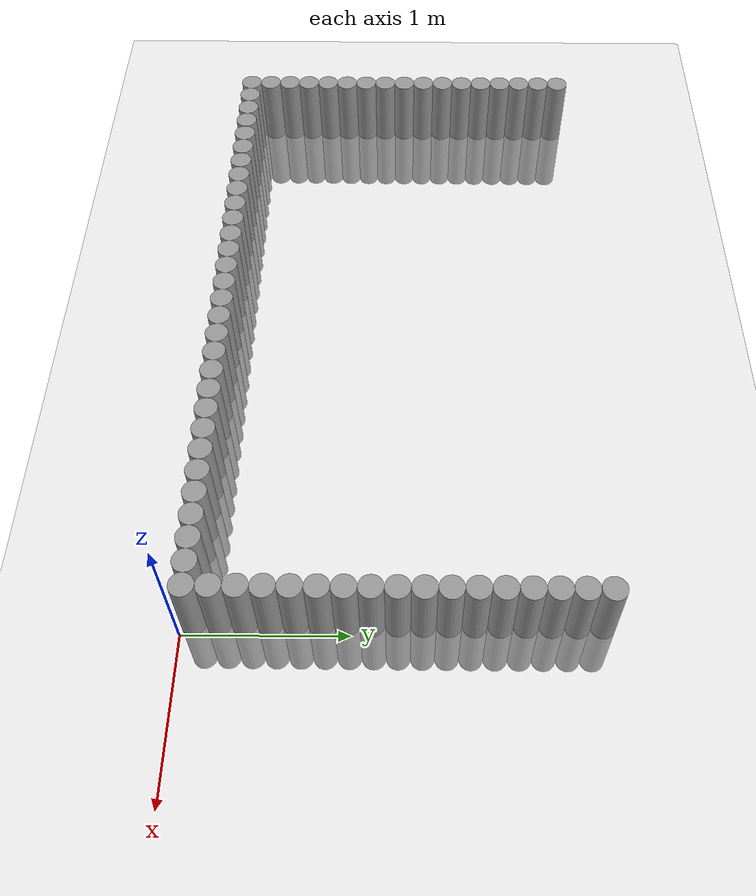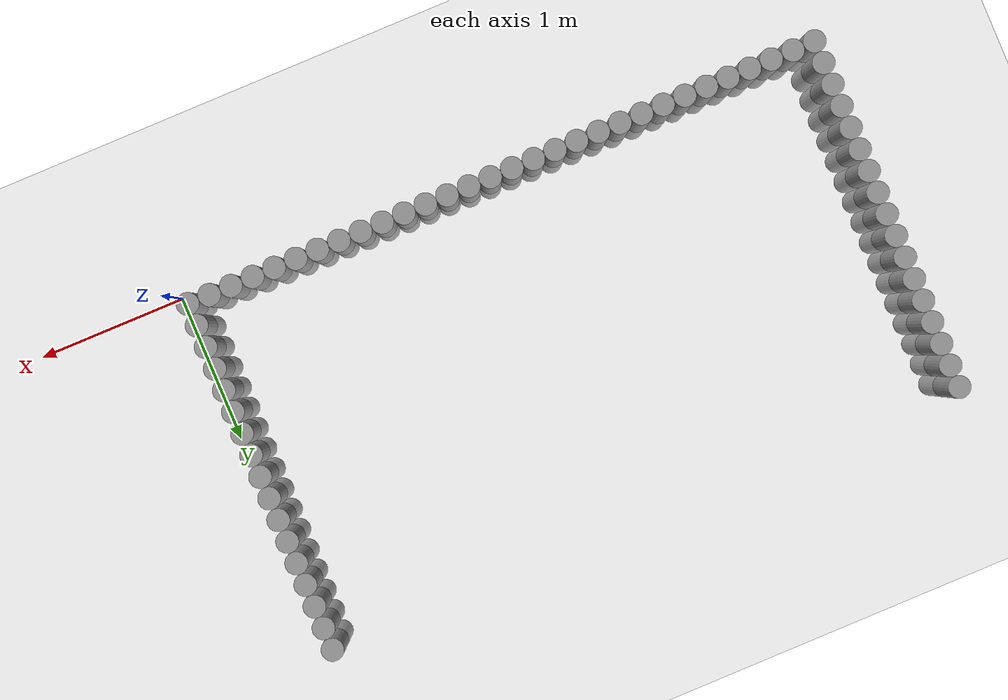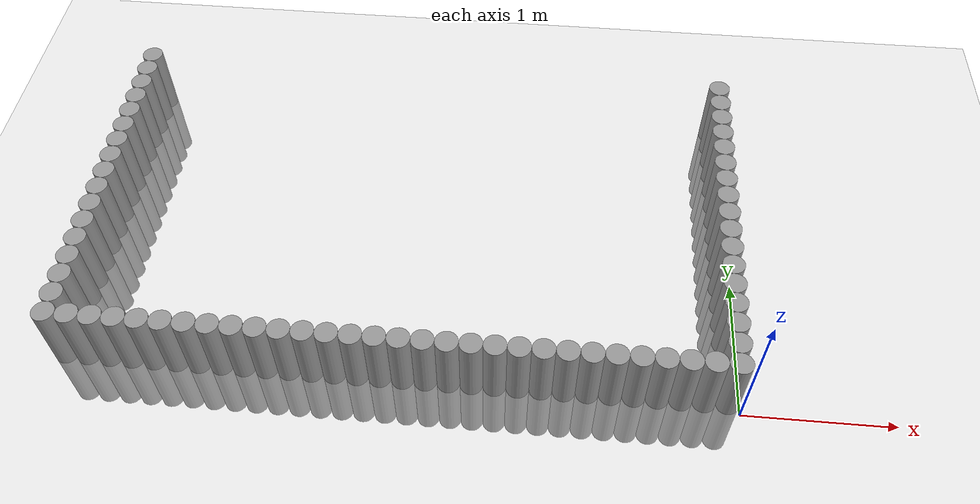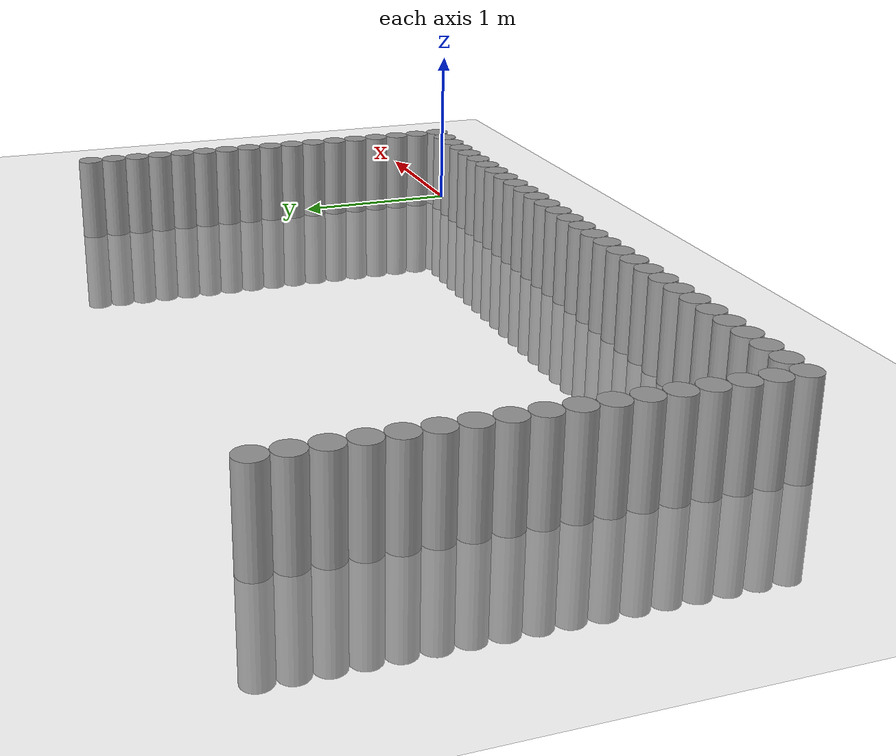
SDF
<sdf version="1.6">
 <world name="default">
  <model name="ground_plane">
   <static>1</static>
   <link name="link">
    <collision name="collision">
     <geometry><plane><normal>0 0 1</normal><size>100 100</size></plane></geometry>
     <surface><friction><ode><mu>100</mu><mu2>50</mu2></ode></friction></surface>
    </collision>
    <visual name="visual">
     <cast_shadows>0</cast_shadows>
     <geometry><plane><normal>0 0 1</normal><size>100 100</size></plane></geometry>
     <material>
      <script><uri>file://media/materials/scripts/gazebo.material</uri><name>Gazebo/Grey</name></script>
     </material>
    </visual>
   </link>
  </model>
  <model name="unit_cylinder_0">
   <pose>-0.075000 0.075000 0.000000 0.000000 0.000000 0.000000</pose>
   <link name="link">
    <inertial>
     <mass>1</mass>
     <inertia><ixx>0.145833</ixx><ixy>0</ixy><ixz>0</ixz><iyy>0.145833</iyy><iyz>0</iyz><izz>0.125</izz></inertia>
    </inertial>
    <collision name="collision">
     <geometry><cylinder><radius>0.075000</radius><length>1</length></cylinder></geometry>
    </collision>
    <visual name="visual">
     <geometry><cylinder><radius>0.075000</radius><length>1</length></cylinder></geometry>
     <material>
      <script><name>Gazebo/Grey</name><uri>file://media/materials/scripts/gazebo.material</uri></script>
     </material>
    </visual>
   </link>
  </model>
  <model name="unit_cylinder_1">
   <pose>-0.225000 0.075000 0.000000 0.000000 0.000000 0.000000</pose>
   <link name="link">
    <inertial>
     <mass>1</mass>
     <inertia><ixx>0.145833</ixx><ixy>0</ixy><ixz>0</ixz><iyy>0.145833</iyy><iyz>0</iyz><izz>0.125</izz></inertia>
    </inertial>
    <collision name="collision">
     <geometry><cylinder><radius>0.075000</radius><length>1</length></cylinder></geometry>
    </collision>
    <visual name="visual">
     <geometry><cylinder><radius>0.075000</radius><length>1</length></cylinder></geometry>
     <material>
      <script><name>Gazebo/Grey</name><uri>file://media/materials/scripts/gazebo.material</uri></script>
     </material>
    </visual>
   </link>
  </model>
  <model name="unit_cylinder_2">
   <pose>-0.375000 0.075000 0.000000 0.000000 0.000000 0.000000</pose>
   <link name="link">
    <inertial>
     <mass>1</mass>
     <inertia><ixx>0.145833</ixx><ixy>0</ixy><ixz>0</ixz><iyy>0.145833</iyy><iyz>0</iyz><izz>0.125</izz></inertia>
    </inertial>
    <collision name="collision">
     <geometry><cylinder><radius>0.075000</radius><length>1</length></cylinder></geometry>
    </collision>
    <visual name="visual">
     <geometry><cylinder><radius>0.075000</radius><length>1</length></cylinder></geometry>
     <material>
      <script><name>Gazebo/Grey</name><uri>file://media/materials/scripts/gazebo.material</uri></script>
     </material>
    </visual>
   </link>
  </model>
  <model name="unit_cylinder_3">
   <pose>-0.525000 0.075000 0.000000 0.000000 0.000000 0.000000</pose>
   <link name="link">
    <inertial>
     <mass>1</mass>
     <inertia><ixx>0.145833</ixx><ixy>0</ixy><ixz>0</ixz><iyy>0.145833</iyy><iyz>0</iyz><izz>0.125</izz></inertia>
    </inertial>
    <collision name="collision">
     <geometry><cylinder><radius>0.075000</radius><length>1</length></cylinder></geometry>
    </collision>
    <visual name="visual">
     <geometry><cylinder><radius>0.075000</radius><length>1</length></cylinder></geometry>
     <material>
      <script><name>Gazebo/Grey</name><uri>file://media/materials/scripts/gazebo.material</uri></script>
     </material>
    </visual>
   </link>
  </model>
  <model name="unit_cylinder_4">
   <pose>-0.675000 0.075000 0.000000 0.000000 0.000000 0.000000</pose>
   <link name="link">
    <inertial>
     <mass>1</mass>
     <inertia><ixx>0.145833</ixx><ixy>0</ixy><ixz>0</ixz><iyy>0.145833</iyy><iyz>0</iyz><izz>0.125</izz></inertia>
    </inertial>
    <collision name="collision">
     <geometry><cylinder><radius>0.075000</radius><length>1</length></cylinder></geometry>
    </collision>
    <visual name="visual">
     <geometry><cylinder><radius>0.075000</radius><length>1</length></cylinder></geometry>
     <material>
      <script><name>Gazebo/Grey</name><uri>file://media/materials/scripts/gazebo.material</uri></script>
     </material>
    </visual>
   </link>
  </model>
  <model name="unit_cylinder_5">
   <pose>-0.825000 0.075000 0.000000 0.000000 0.000000 0.000000</pose>
   <link name="link">
    <inertial>
     <mass>1</mass>
     <inertia><ixx>0.145833</ixx><ixy>0</ixy><ixz>0</ixz><iyy>0.145833</iyy><iyz>0</iyz><izz>0.125</izz></inertia>
    </inertial>
    <collision name="collision">
     <geometry><cylinder><radius>0.075000</radius><length>1</length></cylinder></geometry>
    </collision>
    <visual name="visual">
     <geometry><cylinder><radius>0.075000</radius><length>1</length></cylinder></geometry>
     <material>
      <script><name>Gazebo/Grey</name><uri>file://media/materials/scripts/gazebo.material</uri></script>
     </material>
    </visual>
   </link>
  </model>
  <model name="unit_cylinder_6">
   <pose>-0.975000 0.075000 0.000000 0.000000 0.000000 0.000000</pose>
   <link name="link">
    <inertial>
     <mass>1</mass>
     <inertia><ixx>0.145833</ixx><ixy>0</ixy><ixz>0</ixz><iyy>0.145833</iyy><iyz>0</iyz><izz>0.125</izz></inertia>
    </inertial>
    <collision name="collision">
     <geometry><cylinder><radius>0.075000</radius><length>1</length></cylinder></geometry>
    </collision>
    <visual name="visual">
     <geometry><cylinder><radius>0.075000</radius><length>1</length></cylinder></geometry>
     <material>
      <script><name>Gazebo/Grey</name><uri>file://media/materials/scripts/gazebo.material</uri></script>
     </material>
    </visual>
   </link>
  </model>
  <model name="unit_cylinder_7">
   <pose>-1.125000 0.075000 0.000000 0.000000 0.000000 0.000000</pose>
   <link name="link">
    <inertial>
     <mass>1</mass>
     <inertia><ixx>0.145833</ixx><ixy>0</ixy><ixz>0</ixz><iyy>0.145833</iyy><iyz>0</iyz><izz>0.125</izz></inertia>
    </inertial>
    <collision name="collision">
     <geometry><cylinder><radius>0.075000</radius><length>1</length></cylinder></geometry>
    </collision>
    <visual name="visual">
     <geometry><cylinder><radius>0.075000</radius><length>1</length></cylinder></geometry>
     <material>
      <script><name>Gazebo/Grey</name><uri>file://media/materials/scripts/gazebo.material</uri></script>
     </material>
    </visual>
   </link>
  </model>
  <model name="unit_cylinder_8">
   <pose>-1.275000 0.075000 0.000000 0.000000 0.000000 0.000000</pose>
   <link name="link">
    <inertial>
     <mass>1</mass>
     <inertia><ixx>0.145833</ixx><ixy>0</ixy><ixz>0</ixz><iyy>0.145833</iyy><iyz>0</iyz><izz>0.125</izz></inertia>
    </inertial>
    <collision name="collision">
     <geometry><cylinder><radius>0.075000</radius><length>1</length></cylinder></geometry>
    </collision>
    <visual name="visual">
     <geometry><cylinder><radius>0.075000</radius><length>1</length></cylinder></geometry>
     <material>
      <script><name>Gazebo/Grey</name><uri>file://media/materials/scripts/gazebo.material</uri></script>
     </material>
    </visual>
   </link>
  </model>
  <model name="unit_cylinder_9">
   <pose>-1.425000 0.075000 0.000000 0.000000 0.000000 0.000000</pose>
   <link name="link">
    <inertial>
     <mass>1</mass>
     <inertia><ixx>0.145833</ixx><ixy>0</ixy><ixz>0</ixz><iyy>0.145833</iyy><iyz>0</iyz><izz>0.125</izz></inertia>
    </inertial>
    <collision name="collision">
     <geometry><cylinder><radius>0.075000</radius><length>1</length></cylinder></geometry>
    </collision>
    <visual name="visual">
     <geometry><cylinder><radius>0.075000</radius><length>1</length></cylinder></geometry>
     <material>
      <script><name>Gazebo/Grey</name><uri>file://media/materials/scripts/gazebo.material</uri></script>
     </material>
    </visual>
   </link>
  </model>
  <model name="unit_cylinder_10">
   <pose>-1.575000 0.075000 0.000000 0.000000 0.000000 0.000000</pose>
   <link name="link">
    <inertial>
     <mass>1</mass>
     <inertia><ixx>0.145833</ixx><ixy>0</ixy><ixz>0</ixz><iyy>0.145833</iyy><iyz>0</iyz><izz>0.125</izz></inertia>
    </inertial>
    <collision name="collision">
     <geometry><cylinder><radius>0.075000</radius><length>1</length></cylinder></geometry>
    </collision>
    <visual name="visual">
     <geometry><cylinder><radius>0.075000</radius><length>1</length></cylinder></geometry>
     <material>
      <script><name>Gazebo/Grey</name><uri>file://media/materials/scripts/gazebo.material</uri></script>
     </material>
    </visual>
   </link>
  </model>
  <model name="unit_cylinder_11">
   <pose>-1.725000 0.075000 0.000000 0.000000 0.000000 0.000000</pose>
   <link name="link">
    <inertial>
     <mass>1</mass>
     <inertia><ixx>0.145833</ixx><ixy>0</ixy><ixz>0</ixz><iyy>0.145833</iyy><iyz>0</iyz><izz>0.125</izz></inertia>
    </inertial>
    <collision name="collision">
     <geometry><cylinder><radius>0.075000</radius><length>1</length></cylinder></geometry>
    </collision>
    <visual name="visual">
     <geometry><cylinder><radius>0.075000</radius><length>1</length></cylinder></geometry>
     <material>
      <script><name>Gazebo/Grey</name><uri>file://media/materials/scripts/gazebo.material</uri></script>
     </material>
    </visual>
   </link>
  </model>
  <model name="unit_cylinder_12">
   <pose>-1.875000 0.075000 0.000000 0.000000 0.000000 0.000000</pose>
   <link name="link">
    <inertial>
     <mass>1</mass>
     <inertia><ixx>0.145833</ixx><ixy>0</ixy><ixz>0</ixz><iyy>0.145833</iyy><iyz>0</iyz><izz>0.125</izz></inertia>
    </inertial>
    <collision name="collision">
     <geometry><cylinder><radius>0.075000</radius><length>1</length></cylinder></geometry>
    </collision>
    <visual name="visual">
     <geometry><cylinder><radius>0.075000</radius><length>1</length></cylinder></geometry>
     <material>
      <script><name>Gazebo/Grey</name><uri>file://media/materials/scripts/gazebo.material</uri></script>
     </material>
    </visual>
   </link>
  </model>
  <model name="unit_cylinder_13">
   <pose>-2.025000 0.075000 0.000000 0.000000 0.000000 0.000000</pose>
   <link name="link">
    <inertial>
     <mass>1</mass>
     <inertia><ixx>0.145833</ixx><ixy>0</ixy><ixz>0</ixz><iyy>0.145833</iyy><iyz>0</iyz><izz>0.125</izz></inertia>
    </inertial>
    <collision name="collision">
     <geometry><cylinder><radius>0.075000</radius><length>1</length></cylinder></geometry>
    </collision>
    <visual name="visual">
     <geometry><cylinder><radius>0.075000</radius><length>1</length></cylinder></geometry>
     <material>
      <script><name>Gazebo/Grey</name><uri>file://media/materials/scripts/gazebo.material</uri></script>
     </material>
    </visual>
   </link>
  </model>
  <model name="unit_cylinder_14">
   <pose>-2.175000 0.075000 0.000000 0.000000 0.000000 0.000000</pose>
   <link name="link">
    <inertial>
     <mass>1</mass>
     <inertia><ixx>0.145833</ixx><ixy>0</ixy><ixz>0</ixz><iyy>0.145833</iyy><iyz>0</iyz><izz>0.125</izz></inertia>
    </inertial>
    <collision name="collision">
     <geometry><cylinder><radius>0.075000</radius><length>1</length></cylinder></geometry>
    </collision>
    <visual name="visual">
     <geometry><cylinder><radius>0.075000</radius><length>1</length></cylinder></geometry>
     <material>
      <script><name>Gazebo/Grey</name><uri>file://media/materials/scripts/gazebo.material</uri></script>
     </material>
    </visual>
   </link>
  </model>
  <model name="unit_cylinder_15">
   <pose>-2.325000 0.075000 0.000000 0.000000 0.000000 0.000000</pose>
   <link name="link">
    <inertial>
     <mass>1</mass>
     <inertia><ixx>0.145833</ixx><ixy>0</ixy><ixz>0</ixz><iyy>0.145833</iyy><iyz>0</iyz><izz>0.125</izz></inertia>
    </inertial>
    <collision name="collision">
     <geometry><cylinder><radius>0.075000</radius><length>1</length></cylinder></geometry>
    </collision>
    <visual name="visual">
     <geometry><cylinder><radius>0.075000</radius><length>1</length></cylinder></geometry>
     <material>
      <script><name>Gazebo/Grey</name><uri>file://media/materials/scripts/gazebo.material</uri></script>
     </material>
    </visual>
   </link>
  </model>
  <model name="unit_cylinder_16">
   <pose>-2.475000 0.075000 0.000000 0.000000 0.000000 0.000000</pose>
   <link name="link">
    <inertial>
     <mass>1</mass>
     <inertia><ixx>0.145833</ixx><ixy>0</ixy><ixz>0</ixz><iyy>0.145833</iyy><iyz>0</iyz><izz>0.125</izz></inertia>
    </inertial>
    <collision name="collision">
     <geometry><cylinder><radius>0.075000</radius><length>1</length></cylinder></geometry>
    </collision>
    <visual name="visual">
     <geometry><cylinder><radius>0.075000</radius><length>1</length></cylinder></geometry>
     <material>
      <script><name>Gazebo/Grey</name><uri>file://media/materials/scripts/gazebo.material</uri></script>
     </material>
    </visual>
   </link>
  </model>
  <model name="unit_cylinder_17">
   <pose>-2.625000 0.075000 0.000000 0.000000 0.000000 0.000000</pose>
   <link name="link">
    <inertial>
     <mass>1</mass>
     <inertia><ixx>0.145833</ixx><ixy>0</ixy><ixz>0</ixz><iyy>0.145833</iyy><iyz>0</iyz><izz>0.125</izz></inertia>
    </inertial>
    <collision name="collision">
     <geometry><cylinder><radius>0.075000</radius><length>1</length></cylinder></geometry>
    </collision>
    <visual name="visual">
     <geometry><cylinder><radius>0.075000</radius><length>1</length></cylinder></geometry>
     <material>
      <script><name>Gazebo/Grey</name><uri>file://media/materials/scripts/gazebo.material</uri></script>
     </material>
    </visual>
   </link>
  </model>
  <model name="unit_cylinder_18">
   <pose>-2.775000 0.075000 0.000000 0.000000 0.000000 0.000000</pose>
   <link name="link">
    <inertial>
     <mass>1</mass>
     <inertia><ixx>0.145833</ixx><ixy>0</ixy><ixz>0</ixz><iyy>0.145833</iyy><iyz>0</iyz><izz>0.125</izz></inertia>
    </inertial>
    <collision name="collision">
     <geometry><cylinder><radius>0.075000</radius><length>1</length></cylinder></geometry>
    </collision>
    <visual name="visual">
     <geometry><cylinder><radius>0.075000</radius><length>1</length></cylinder></geometry>
     <material>
      <script><name>Gazebo/Grey</name><uri>file://media/materials/scripts/gazebo.material</uri></script>
     </material>
    </visual>
   </link>
  </model>
  <model name="unit_cylinder_19">
   <pose>-2.925000 0.075000 0.000000 0.000000 0.000000 0.000000</pose>
   <link name="link">
    <inertial>
     <mass>1</mass>
     <inertia><ixx>0.145833</ixx><ixy>0</ixy><ixz>0</ixz><iyy>0.145833</iyy><iyz>0</iyz><izz>0.125</izz></inertia>
    </inertial>
    <collision name="collision">
     <geometry><cylinder><radius>0.075000</radius><length>1</length></cylinder></geometry>
    </collision>
    <visual name="visual">
     <geometry><cylinder><radius>0.075000</radius><length>1</length></cylinder></geometry>
     <material>
      <script><name>Gazebo/Grey</name><uri>file://media/materials/scripts/gazebo.material</uri></script>
     </material>
    </visual>
   </link>
  </model>
  <model name="unit_cylinder_20">
   <pose>-3.075000 0.075000 0.000000 0.000000 0.000000 0.000000</pose>
   <link name="link">
    <inertial>
     <mass>1</mass>
     <inertia><ixx>0.145833</ixx><ixy>0</ixy><ixz>0</ixz><iyy>0.145833</iyy><iyz>0</iyz><izz>0.125</izz></inertia>
    </inertial>
    <collision name="collision">
     <geometry><cylinder><radius>0.075000</radius><length>1</length></cylinder></geometry>
    </collision>
    <visual name="visual">
     <geometry><cylinder><radius>0.075000</radius><length>1</length></cylinder></geometry>
     <material>
      <script><name>Gazebo/Grey</name><uri>file://media/materials/scripts/gazebo.material</uri></script>
     </material>
    </visual>
   </link>
  </model>
  <model name="unit_cylinder_21">
   <pose>-3.225000 0.075000 0.000000 0.000000 0.000000 0.000000</pose>
   <link name="link">
    <inertial>
     <mass>1</mass>
     <inertia><ixx>0.145833</ixx><ixy>0</ixy><ixz>0</ixz><iyy>0.145833</iyy><iyz>0</iyz><izz>0.125</izz></inertia>
    </inertial>
    <collision name="collision">
     <geometry><cylinder><radius>0.075000</radius><length>1</length></cylinder></geometry>
    </collision>
    <visual name="visual">
     <geometry><cylinder><radius>0.075000</radius><length>1</length></cylinder></geometry>
     <material>
      <script><name>Gazebo/Grey</name><uri>file://media/materials/scripts/gazebo.material</uri></script>
     </material>
    </visual>
   </link>
  </model>
  <model name="unit_cylinder_22">
   <pose>-3.375000 0.075000 0.000000 0.000000 0.000000 0.000000</pose>
   <link name="link">
    <inertial>
     <mass>1</mass>
     <inertia><ixx>0.145833</ixx><ixy>0</ixy><ixz>0</ixz><iyy>0.145833</iyy><iyz>0</iyz><izz>0.125</izz></inertia>
    </inertial>
    <collision name="collision">
     <geometry><cylinder><radius>0.075000</radius><length>1</length></cylinder></geometry>
    </collision>
    <visual name="visual">
     <geometry><cylinder><radius>0.075000</radius><length>1</length></cylinder></geometry>
     <material>
      <script><name>Gazebo/Grey</name><uri>file://media/materials/scripts/gazebo.material</uri></script>
     </material>
    </visual>
   </link>
  </model>
  <model name="unit_cylinder_23">
   <pose>-3.525000 0.075000 0.000000 0.000000 0.000000 0.000000</pose>
   <link name="link">
    <inertial>
     <mass>1</mass>
     <inertia><ixx>0.145833</ixx><ixy>0</ixy><ixz>0</ixz><iyy>0.145833</iyy><iyz>0</iyz><izz>0.125</izz></inertia>
    </inertial>
    <collision name="collision">
     <geometry><cylinder><radius>0.075000</radius><length>1</length></cylinder></geometry>
    </collision>
    <visual name="visual">
     <geometry><cylinder><radius>0.075000</radius><length>1</length></cylinder></geometry>
     <material>
      <script><name>Gazebo/Grey</name><uri>file://media/materials/scripts/gazebo.material</uri></script>
     </material>
    </visual>
   </link>
  </model>
  <model name="unit_cylinder_24">
   <pose>-3.675000 0.075000 0.000000 0.000000 0.000000 0.000000</pose>
   <link name="link">
    <inertial>
     <mass>1</mass>
     <inertia><ixx>0.145833</ixx><ixy>0</ixy><ixz>0</ixz><iyy>0.145833</iyy><iyz>0</iyz><izz>0.125</izz></inertia>
    </inertial>
    <collision name="collision">
     <geometry><cylinder><radius>0.075000</radius><length>1</length></cylinder></geometry>
    </collision>
    <visual name="visual">
     <geometry><cylinder><radius>0.075000</radius><length>1</length></cylinder></geometry>
     <material>
      <script><name>Gazebo/Grey</name><uri>file://media/materials/scripts/gazebo.material</uri></script>
     </material>
    </visual>
   </link>
  </model>
  <model name="unit_cylinder_25">
   <pose>-3.825000 0.075000 0.000000 0.000000 0.000000 0.000000</pose>
   <link name="link">
    <inertial>
     <mass>1</mass>
     <inertia><ixx>0.145833</ixx><ixy>0</ixy><ixz>0</ixz><iyy>0.145833</iyy><iyz>0</iyz><izz>0.125</izz></inertia>
    </inertial>
    <collision name="collision">
     <geometry><cylinder><radius>0.075000</radius><length>1</length></cylinder></geometry>
    </collision>
    <visual name="visual">
     <geometry><cylinder><radius>0.075000</radius><length>1</length></cylinder></geometry>
     <material>
      <script><name>Gazebo/Grey</name><uri>file://media/materials/scripts/gazebo.material</uri></script>
     </material>
    </visual>
   </link>
  </model>
  <model name="unit_cylinder_26">
   <pose>-3.975000 0.075000 0.000000 0.000000 0.000000 0.000000</pose>
   <link name="link">
    <inertial>
     <mass>1</mass>
     <inertia><ixx>0.145833</ixx><ixy>0</ixy><ixz>0</ixz><iyy>0.145833</iyy><iyz>0</iyz><izz>0.125</izz></inertia>
    </inertial>
    <collision name="collision">
     <geometry><cylinder><radius>0.075000</radius><length>1</length></cylinder></geometry>
    </collision>
    <visual name="visual">
     <geometry><cylinder><radius>0.075000</radius><length>1</length></cylinder></geometry>
     <material>
      <script><name>Gazebo/Grey</name><uri>file://media/materials/scripts/gazebo.material</uri></script>
     </material>
    </visual>
   </link>
  </model>
  <model name="unit_cylinder_27">
   <pose>-4.125000 0.075000 0.000000 0.000000 0.000000 0.000000</pose>
   <link name="link">
    <inertial>
     <mass>1</mass>
     <inertia><ixx>0.145833</ixx><ixy>0</ixy><ixz>0</ixz><iyy>0.145833</iyy><iyz>0</iyz><izz>0.125</izz></inertia>
    </inertial>
    <collision name="collision">
     <geometry><cylinder><radius>0.075000</radius><length>1</length></cylinder></geometry>
    </collision>
    <visual name="visual">
     <geometry><cylinder><radius>0.075000</radius><length>1</length></cylinder></geometry>
     <material>
      <script><name>Gazebo/Grey</name><uri>file://media/materials/scripts/gazebo.material</uri></script>
     </material>
    </visual>
   </link>
  </model>
  <model name="unit_cylinder_28">
   <pose>-4.275000 0.075000 0.000000 0.000000 0.000000 0.000000</pose>
   <link name="link">
    <inertial>
     <mass>1</mass>
     <inertia><ixx>0.145833</ixx><ixy>0</ixy><ixz>0</ixz><iyy>0.145833</iyy><iyz>0</iyz><izz>0.125</izz></inertia>
    </inertial>
    <collision name="collision">
     <geometry><cylinder><radius>0.075000</radius><length>1</length></cylinder></geometry>
    </collision>
    <visual name="visual">
     <geometry><cylinder><radius>0.075000</radius><length>1</length></cylinder></geometry>
     <material>
      <script><name>Gazebo/Grey</name><uri>file://media/materials/scripts/gazebo.material</uri></script>
     </material>
    </visual>
   </link>
  </model>
  <model name="unit_cylinder_29">
   <pose>-4.425000 0.075000 0.000000 0.000000 0.000000 0.000000</pose>
   <link name="link">
    <inertial>
     <mass>1</mass>
     <inertia><ixx>0.145833</ixx><ixy>0</ixy><ixz>0</ixz><iyy>0.145833</iyy><iyz>0</iyz><izz>0.125</izz></inertia>
    </inertial>
    <collision name="collision">
     <geometry><cylinder><radius>0.075000</radius><length>1</length></cylinder></geometry>
    </collision>
    <visual name="visual">
     <geometry><cylinder><radius>0.075000</radius><length>1</length></cylinder></geometry>
     <material>
      <script><name>Gazebo/Grey</name><uri>file://media/materials/scripts/gazebo.material</uri></script>
     </material>
    </visual>
   </link>
  </model>
  <model name="unit_cylinder_30">
   <pose>-0.075000 0.225000 0.000000 0.000000 0.000000 0.000000</pose>
   <link name="link">
    <inertial>
     <mass>1</mass>
     <inertia><ixx>0.145833</ixx><ixy>0</ixy><ixz>0</ixz><iyy>0.145833</iyy><iyz>0</iyz><izz>0.125</izz></inertia>
    </inertial>
    <collision name="collision">
     <geometry><cylinder><radius>0.075000</radius><length>1</length></cylinder></geometry>
    </collision>
    <visual name="visual">
     <geometry><cylinder><radius>0.075000</radius><length>1</length></cylinder></geometry>
     <material>
      <script><name>Gazebo/Grey</name><uri>file://media/materials/scripts/gazebo.material</uri></script>
     </material>
    </visual>
   </link>
  </model>
  <model name="unit_cylinder_31">
   <pose>-4.425000 0.225000 0.000000 0.000000 0.000000 0.000000</pose>
   <link name="link">
    <inertial>
     <mass>1</mass>
     <inertia><ixx>0.145833</ixx><ixy>0</ixy><ixz>0</ixz><iyy>0.145833</iyy><iyz>0</iyz><izz>0.125</izz></inertia>
    </inertial>
    <collision name="collision">
     <geometry><cylinder><radius>0.075000</radius><length>1</length></cylinder></geometry>
    </collision>
    <visual name="visual">
     <geometry><cylinder><radius>0.075000</radius><length>1</length></cylinder></geometry>
     <material>
      <script><name>Gazebo/Grey</name><uri>file://media/materials/scripts/gazebo.material</uri></script>
     </material>
    </visual>
   </link>
  </model>
  <model name="unit_cylinder_32">
   <pose>-0.075000 0.375000 0.000000 0.000000 0.000000 0.000000</pose>
   <link name="link">
    <inertial>
     <mass>1</mass>
     <inertia><ixx>0.145833</ixx><ixy>0</ixy><ixz>0</ixz><iyy>0.145833</iyy><iyz>0</iyz><izz>0.125</izz></inertia>
    </inertial>
    <collision name="collision">
     <geometry><cylinder><radius>0.075000</radius><length>1</length></cylinder></geometry>
    </collision>
    <visual name="visual">
     <geometry><cylinder><radius>0.075000</radius><length>1</length></cylinder></geometry>
     <material>
      <script><name>Gazebo/Grey</name><uri>file://media/materials/scripts/gazebo.material</uri></script>
     </material>
    </visual>
   </link>
  </model>
  <model name="unit_cylinder_33">
   <pose>-4.425000 0.375000 0.000000 0.000000 0.000000 0.000000</pose>
   <link name="link">
    <inertial>
     <mass>1</mass>
     <inertia><ixx>0.145833</ixx><ixy>0</ixy><ixz>0</ixz><iyy>0.145833</iyy><iyz>0</iyz><izz>0.125</izz></inertia>
    </inertial>
    <collision name="collision">
     <geometry><cylinder><radius>0.075000</radius><length>1</length></cylinder></geometry>
    </collision>
    <visual name="visual">
     <geometry><cylinder><radius>0.075000</radius><length>1</length></cylinder></geometry>
     <material>
      <script><name>Gazebo/Grey</name><uri>file://media/materials/scripts/gazebo.material</uri></script>
     </material>
    </visual>
   </link>
  </model>
  <model name="unit_cylinder_34">
   <pose>-0.075000 0.525000 0.000000 0.000000 0.000000 0.000000</pose>
   <link name="link">
    <inertial>
     <mass>1</mass>
     <inertia><ixx>0.145833</ixx><ixy>0</ixy><ixz>0</ixz><iyy>0.145833</iyy><iyz>0</iyz><izz>0.125</izz></inertia>
    </inertial>
    <collision name="collision">
     <geometry><cylinder><radius>0.075000</radius><length>1</length></cylinder></geometry>
    </collision>
    <visual name="visual">
     <geometry><cylinder><radius>0.075000</radius><length>1</length></cylinder></geometry>
     <material>
      <script><name>Gazebo/Grey</name><uri>file://media/materials/scripts/gazebo.material</uri></script>
     </material>
    </visual>
   </link>
  </model>
  <model name="unit_cylinder_35">
   <pose>-4.425000 0.525000 0.000000 0.000000 0.000000 0.000000</pose>
   <link name="link">
    <inertial>
     <mass>1</mass>
     <inertia><ixx>0.145833</ixx><ixy>0</ixy><ixz>0</ixz><iyy>0.145833</iyy><iyz>0</iyz><izz>0.125</izz></inertia>
    </inertial>
    <collision name="collision">
     <geometry><cylinder><radius>0.075000</radius><length>1</length></cylinder></geometry>
    </collision>
    <visual name="visual">
     <geometry><cylinder><radius>0.075000</radius><length>1</length></cylinder></geometry>
     <material>
      <script><name>Gazebo/Grey</name><uri>file://media/materials/scripts/gazebo.material</uri></script>
     </material>
    </visual>
   </link>
  </model>
  <model name="unit_cylinder_36">
   <pose>-0.075000 0.675000 0.000000 0.000000 0.000000 0.000000</pose>
   <link name="link">
    <inertial>
     <mass>1</mass>
     <inertia><ixx>0.145833</ixx><ixy>0</ixy><ixz>0</ixz><iyy>0.145833</iyy><iyz>0</iyz><izz>0.125</izz></inertia>
    </inertial>
    <collision name="collision">
     <geometry><cylinder><radius>0.075000</radius><length>1</length></cylinder></geometry>
    </collision>
    <visual name="visual">
     <geometry><cylinder><radius>0.075000</radius><length>1</length></cylinder></geometry>
     <material>
      <script><name>Gazebo/Grey</name><uri>file://media/materials/scripts/gazebo.material</uri></script>
     </material>
    </visual>
   </link>
  </model>
  <model name="unit_cylinder_37">
   <pose>-4.425000 0.675000 0.000000 0.000000 0.000000 0.000000</pose>
   <link name="link">
    <inertial>
     <mass>1</mass>
     <inertia><ixx>0.145833</ixx><ixy>0</ixy><ixz>0</ixz><iyy>0.145833</iyy><iyz>0</iyz><izz>0.125</izz></inertia>
    </inertial>
    <collision name="collision">
     <geometry><cylinder><radius>0.075000</radius><length>1</length></cylinder></geometry>
    </collision>
    <visual name="visual">
     <geometry><cylinder><radius>0.075000</radius><length>1</length></cylinder></geometry>
     <material>
      <script><name>Gazebo/Grey</name><uri>file://media/materials/scripts/gazebo.material</uri></script>
     </material>
    </visual>
   </link>
  </model>
  <model name="unit_cylinder_38">
   <pose>-0.075000 0.825000 0.000000 0.000000 0.000000 0.000000</pose>
   <link name="link">
    <inertial>
     <mass>1</mass>
     <inertia><ixx>0.145833</ixx><ixy>0</ixy><ixz>0</ixz><iyy>0.145833</iyy><iyz>0</iyz><izz>0.125</izz></inertia>
    </inertial>
    <collision name="collision">
     <geometry><cylinder><radius>0.075000</radius><length>1</length></cylinder></geometry>
    </collision>
    <visual name="visual">
     <geometry><cylinder><radius>0.075000</radius><length>1</length></cylinder></geometry>
     <material>
      <script><name>Gazebo/Grey</name><uri>file://media/materials/scripts/gazebo.material</uri></script>
     </material>
    </visual>
   </link>
  </model>
  <model name="unit_cylinder_39">
   <pose>-4.425000 0.825000 0.000000 0.000000 0.000000 0.000000</pose>
   <link name="link">
    <inertial>
     <mass>1</mass>
     <inertia><ixx>0.145833</ixx><ixy>0</ixy><ixz>0</ixz><iyy>0.145833</iyy><iyz>0</iyz><izz>0.125</izz></inertia>
    </inertial>
    <collision name="collision">
     <geometry><cylinder><radius>0.075000</radius><length>1</length></cylinder></geometry>
    </collision>
    <visual name="visual">
     <geometry><cylinder><radius>0.075000</radius><length>1</length></cylinder></geometry>
     <material>
      <script><name>Gazebo/Grey</name><uri>file://media/materials/scripts/gazebo.material</uri></script>
     </material>
    </visual>
   </link>
  </model>
  <model name="unit_cylinder_40">
   <pose>-0.075000 0.975000 0.000000 0.000000 0.000000 0.000000</pose>
   <link name="link">
    <inertial>
     <mass>1</mass>
     <inertia><ixx>0.145833</ixx><ixy>0</ixy><ixz>0</ixz><iyy>0.145833</iyy><iyz>0</iyz><izz>0.125</izz></inertia>
    </inertial>
    <collision name="collision">
     <geometry><cylinder><radius>0.075000</radius><length>1</length></cylinder></geometry>
    </collision>
    <visual name="visual">
     <geometry><cylinder><radius>0.075000</radius><length>1</length></cylinder></geometry>
     <material>
      <script><name>Gazebo/Grey</name><uri>file://media/materials/scripts/gazebo.material</uri></script>
     </material>
    </visual>
   </link>
  </model>
  <model name="unit_cylinder_41">
   <pose>-4.425000 0.975000 0.000000 0.000000 0.000000 0.000000</pose>
   <link name="link">
    <inertial>
     <mass>1</mass>
     <inertia><ixx>0.145833</ixx><ixy>0</ixy><ixz>0</ixz><iyy>0.145833</iyy><iyz>0</iyz><izz>0.125</izz></inertia>
    </inertial>
    <collision name="collision">
     <geometry><cylinder><radius>0.075000</radius><length>1</length></cylinder></geometry>
    </collision>
    <visual name="visual">
     <geometry><cylinder><radius>0.075000</radius><length>1</length></cylinder></geometry>
     <material>
      <script><name>Gazebo/Grey</name><uri>file://media/materials/scripts/gazebo.material</uri></script>
     </material>
    </visual>
   </link>
  </model>
  <model name="unit_cylinder_42">
   <pose>-0.075000 1.125000 0.000000 0.000000 0.000000 0.000000</pose>
   <link name="link">
    <inertial>
     <mass>1</mass>
     <inertia><ixx>0.145833</ixx><ixy>0</ixy><ixz>0</ixz><iyy>0.145833</iyy><iyz>0</iyz><izz>0.125</izz></inertia>
    </inertial>
    <collision name="collision">
     <geometry><cylinder><radius>0.075000</radius><length>1</length></cylinder></geometry>
    </collision>
    <visual name="visual">
     <geometry><cylinder><radius>0.075000</radius><length>1</length></cylinder></geometry>
     <material>
      <script><name>Gazebo/Grey</name><uri>file://media/materials/scripts/gazebo.material</uri></script>
     </material>
    </visual>
   </link>
  </model>
  <model name="unit_cylinder_43">
   <pose>-4.425000 1.125000 0.000000 0.000000 0.000000 0.000000</pose>
   <link name="link">
    <inertial>
     <mass>1</mass>
     <inertia><ixx>0.145833</ixx><ixy>0</ixy><ixz>0</ixz><iyy>0.145833</iyy><iyz>0</iyz><izz>0.125</izz></inertia>
    </inertial>
    <collision name="collision">
     <geometry><cylinder><radius>0.075000</radius><length>1</length></cylinder></geometry>
    </collision>
    <visual name="visual">
     <geometry><cylinder><radius>0.075000</radius><length>1</length></cylinder></geometry>
     <material>
      <script><name>Gazebo/Grey</name><uri>file://media/materials/scripts/gazebo.material</uri></script>
     </material>
    </visual>
   </link>
  </model>
  <model name="unit_cylinder_44">
   <pose>-0.075000 1.275000 0.000000 0.000000 0.000000 0.000000</pose>
   <link name="link">
    <inertial>
     <mass>1</mass>
     <inertia><ixx>0.145833</ixx><ixy>0</ixy><ixz>0</ixz><iyy>0.145833</iyy><iyz>0</iyz><izz>0.125</izz></inertia>
    </inertial>
    <collision name="collision">
     <geometry><cylinder><radius>0.075000</radius><length>1</length></cylinder></geometry>
    </collision>
    <visual name="visual">
     <geometry><cylinder><radius>0.075000</radius><length>1</length></cylinder></geometry>
     <material>
      <script><name>Gazebo/Grey</name><uri>file://media/materials/scripts/gazebo.material</uri></script>
     </material>
    </visual>
   </link>
  </model>
  <model name="unit_cylinder_45">
   <pose>-4.425000 1.275000 0.000000 0.000000 0.000000 0.000000</pose>
   <link name="link">
    <inertial>
     <mass>1</mass>
     <inertia><ixx>0.145833</ixx><ixy>0</ixy><ixz>0</ixz><iyy>0.145833</iyy><iyz>0</iyz><izz>0.125</izz></inertia>
    </inertial>
    <collision name="collision">
     <geometry><cylinder><radius>0.075000</radius><length>1</length></cylinder></geometry>
    </collision>
    <visual name="visual">
     <geometry><cylinder><radius>0.075000</radius><length>1</length></cylinder></geometry>
     <material>
      <script><name>Gazebo/Grey</name><uri>file://media/materials/scripts/gazebo.material</uri></script>
     </material>
    </visual>
   </link>
  </model>
  <model name="unit_cylinder_46">
   <pose>-0.075000 1.425000 0.000000 0.000000 0.000000 0.000000</pose>
   <link name="link">
    <inertial>
     <mass>1</mass>
     <inertia><ixx>0.145833</ixx><ixy>0</ixy><ixz>0</ixz><iyy>0.145833</iyy><iyz>0</iyz><izz>0.125</izz></inertia>
    </inertial>
    <collision name="collision">
     <geometry><cylinder><radius>0.075000</radius><length>1</length></cylinder></geometry>
    </collision>
    <visual name="visual">
     <geometry><cylinder><radius>0.075000</radius><length>1</length></cylinder></geometry>
     <material>
      <script><name>Gazebo/Grey</name><uri>file://media/materials/scripts/gazebo.material</uri></script>
     </material>
    </visual>
   </link>
  </model>
  <model name="unit_cylinder_47">
   <pose>-4.425000 1.425000 0.000000 0.000000 0.000000 0.000000</pose>
   <link name="link">
    <inertial>
     <mass>1</mass>
     <inertia><ixx>0.145833</ixx><ixy>0</ixy><ixz>0</ixz><iyy>0.145833</iyy><iyz>0</iyz><izz>0.125</izz></inertia>
    </inertial>
    <collision name="collision">
     <geometry><cylinder><radius>0.075000</radius><length>1</length></cylinder></geometry>
    </collision>
    <visual name="visual">
     <geometry><cylinder><radius>0.075000</radius><length>1</length></cylinder></geometry>
     <material>
      <script><name>Gazebo/Grey</name><uri>file://media/materials/scripts/gazebo.material</uri></script>
     </material>
    </visual>
   </link>
  </model>
  <model name="unit_cylinder_48">
   <pose>-0.075000 1.575000 0.000000 0.000000 0.000000 0.000000</pose>
   <link name="link">
    <inertial>
     <mass>1</mass>
     <inertia><ixx>0.145833</ixx><ixy>0</ixy><ixz>0</ixz><iyy>0.145833</iyy><iyz>0</iyz><izz>0.125</izz></inertia>
    </inertial>
    <collision name="collision">
     <geometry><cylinder><radius>0.075000</radius><length>1</length></cylinder></geometry>
    </collision>
    <visual name="visual">
     <geometry><cylinder><radius>0.075000</radius><length>1</length></cylinder></geometry>
     <material>
      <script><name>Gazebo/Grey</name><uri>file://media/materials/scripts/gazebo.material</uri></script>
     </material>
    </visual>
   </link>
  </model>
  <model name="unit_cylinder_49">
   <pose>-4.425000 1.575000 0.000000 0.000000 0.000000 0.000000</pose>
   <link name="link">
    <inertial>
     <mass>1</mass>
     <inertia><ixx>0.145833</ixx><ixy>0</ixy><ixz>0</ixz><iyy>0.145833</iyy><iyz>0</iyz><izz>0.125</izz></inertia>
    </inertial>
    <collision name="collision">
     <geometry><cylinder><radius>0.075000</radius><length>1</length></cylinder></geometry>
    </collision>
    <visual name="visual">
     <geometry><cylinder><radius>0.075000</radius><length>1</length></cylinder></geometry>
     <material>
      <script><name>Gazebo/Grey</name><uri>file://media/materials/scripts/gazebo.material</uri></script>
     </material>
    </visual>
   </link>
  </model>
  <model name="unit_cylinder_50">
   <pose>-0.075000 1.725000 0.000000 0.000000 0.000000 0.000000</pose>
   <link name="link">
    <inertial>
     <mass>1</mass>
     <inertia><ixx>0.145833</ixx><ixy>0</ixy><ixz>0</ixz><iyy>0.145833</iyy><iyz>0</iyz><izz>0.125</izz></inertia>
    </inertial>
    <collision name="collision">
     <geometry><cylinder><radius>0.075000</radius><length>1</length></cylinder></geometry>
    </collision>
    <visual name="visual">
     <geometry><cylinder><radius>0.075000</radius><length>1</length></cylinder></geometry>
     <material>
      <script><name>Gazebo/Grey</name><uri>file://media/materials/scripts/gazebo.material</uri></script>
     </material>
    </visual>
   </link>
  </model>
  <model name="unit_cylinder_51">
   <pose>-4.425000 1.725000 0.000000 0.000000 0.000000 0.000000</pose>
   <link name="link">
    <inertial>
     <mass>1</mass>
     <inertia><ixx>0.145833</ixx><ixy>0</ixy><ixz>0</ixz><iyy>0.145833</iyy><iyz>0</iyz><izz>0.125</izz></inertia>
    </inertial>
    <collision name="collision">
     <geometry><cylinder><radius>0.075000</radius><length>1</length></cylinder></geometry>
    </collision>
    <visual name="visual">
     <geometry><cylinder><radius>0.075000</radius><length>1</length></cylinder></geometry>
     <material>
      <script><name>Gazebo/Grey</name><uri>file://media/materials/scripts/gazebo.material</uri></script>
     </material>
    </visual>
   </link>
  </model>
  <model name="unit_cylinder_52">
   <pose>-0.075000 1.875000 0.000000 0.000000 0.000000 0.000000</pose>
   <link name="link">
    <inertial>
     <mass>1</mass>
     <inertia><ixx>0.145833</ixx><ixy>0</ixy><ixz>0</ixz><iyy>0.145833</iyy><iyz>0</iyz><izz>0.125</izz></inertia>
    </inertial>
    <collision name="collision">
     <geometry><cylinder><radius>0.075000</radius><length>1</length></cylinder></geometry>
    </collision>
    <visual name="visual">
     <geometry><cylinder><radius>0.075000</radius><length>1</length></cylinder></geometry>
     <material>
      <script><name>Gazebo/Grey</name><uri>file://media/materials/scripts/gazebo.material</uri></script>
     </material>
    </visual>
   </link>
  </model>
  <model name="unit_cylinder_53">
   <pose>-4.425000 1.875000 0.000000 0.000000 0.000000 0.000000</pose>
   <link name="link">
    <inertial>
     <mass>1</mass>
     <inertia><ixx>0.145833</ixx><ixy>0</ixy><ixz>0</ixz><iyy>0.145833</iyy><iyz>0</iyz><izz>0.125</izz></inertia>
    </inertial>
    <collision name="collision">
     <geometry><cylinder><radius>0.075000</radius><length>1</length></cylinder></geometry>
    </collision>
    <visual name="visual">
     <geometry><cylinder><radius>0.075000</radius><length>1</length></cylinder></geometry>
     <material>
      <script><name>Gazebo/Grey</name><uri>file://media/materials/scripts/gazebo.material</uri></script>
     </material>
    </visual>
   </link>
  </model>
  <model name="unit_cylinder_54">
   <pose>-0.075000 2.025000 0.000000 0.000000 0.000000 0.000000</pose>
   <link name="link">
    <inertial>
     <mass>1</mass>
     <inertia><ixx>0.145833</ixx><ixy>0</ixy><ixz>0</ixz><iyy>0.145833</iyy><iyz>0</iyz><izz>0.125</izz></inertia>
    </inertial>
    <collision name="collision">
     <geometry><cylinder><radius>0.075000</radius><length>1</length></cylinder></geometry>
    </collision>
    <visual name="visual">
     <geometry><cylinder><radius>0.075000</radius><length>1</length></cylinder></geometry>
     <material>
      <script><name>Gazebo/Grey</name><uri>file://media/materials/scripts/gazebo.material</uri></script>
     </material>
    </visual>
   </link>
  </model>
  <model name="unit_cylinder_55">
   <pose>-4.425000 2.025000 0.000000 0.000000 0.000000 0.000000</pose>
   <link name="link">
    <inertial>
     <mass>1</mass>
     <inertia><ixx>0.145833</ixx><ixy>0</ixy><ixz>0</ixz><iyy>0.145833</iyy><iyz>0</iyz><izz>0.125</izz></inertia>
    </inertial>
    <collision name="collision">
     <geometry><cylinder><radius>0.075000</radius><length>1</length></cylinder></geometry>
    </collision>
    <visual name="visual">
     <geometry><cylinder><radius>0.075000</radius><length>1</length></cylinder></geometry>
     <material>
      <script><name>Gazebo/Grey</name><uri>file://media/materials/scripts/gazebo.material</uri></script>
     </material>
    </visual>
   </link>
  </model>
  <model name="unit_cylinder_56">
   <pose>-0.075000 2.175000 0.000000 0.000000 0.000000 0.000000</pose>
   <link name="link">
    <inertial>
     <mass>1</mass>
     <inertia><ixx>0.145833</ixx><ixy>0</ixy><ixz>0</ixz><iyy>0.145833</iyy><iyz>0</iyz><izz>0.125</izz></inertia>
    </inertial>
    <collision name="collision">
     <geometry><cylinder><radius>0.075000</radius><length>1</length></cylinder></geometry>
    </collision>
    <visual name="visual">
     <geometry><cylinder><radius>0.075000</radius><length>1</length></cylinder></geometry>
     <material>
      <script><name>Gazebo/Grey</name><uri>file://media/materials/scripts/gazebo.material</uri></script>
     </material>
    </visual>
   </link>
  </model>
  <model name="unit_cylinder_57">
   <pose>-4.425000 2.175000 0.000000 0.000000 0.000000 0.000000</pose>
   <link name="link">
    <inertial>
     <mass>1</mass>
     <inertia><ixx>0.145833</ixx><ixy>0</ixy><ixz>0</ixz><iyy>0.145833</iyy><iyz>0</iyz><izz>0.125</izz></inertia>
    </inertial>
    <collision name="collision">
     <geometry><cylinder><radius>0.075000</radius><length>1</length></cylinder></geometry>
    </collision>
    <visual name="visual">
     <geometry><cylinder><radius>0.075000</radius><length>1</length></cylinder></geometry>
     <material>
      <script><name>Gazebo/Grey</name><uri>file://media/materials/scripts/gazebo.material</uri></script>
     </material>
    </visual>
   </link>
  </model>
  <model name="unit_cylinder_58">
   <pose>-0.075000 2.325000 0.000000 0.000000 0.000000 0.000000</pose>
   <link name="link">
    <inertial>
     <mass>1</mass>
     <inertia><ixx>0.145833</ixx><ixy>0</ixy><ixz>0</ixz><iyy>0.145833</iyy><iyz>0</iyz><izz>0.125</izz></inertia>
    </inertial>
    <collision name="collision">
     <geometry><cylinder><radius>0.075000</radius><length>1</length></cylinder></geometry>
    </collision>
    <visual name="visual">
     <geometry><cylinder><radius>0.075000</radius><length>1</length></cylinder></geometry>
     <material>
      <script><name>Gazebo/Grey</name><uri>file://media/materials/scripts/gazebo.material</uri></script>
     </material>
    </visual>
   </link>
  </model>
  <model name="unit_cylinder_59">
   <pose>-4.425000 2.325000 0.000000 0.000000 0.000000 0.000000</pose>
   <link name="link">
    <inertial>
     <mass>1</mass>
     <inertia><ixx>0.145833</ixx><ixy>0</ixy><ixz>0</ixz><iyy>0.145833</iyy><iyz>0</iyz><izz>0.125</izz></inertia>
    </inertial>
    <collision name="collision">
     <geometry><cylinder><radius>0.075000</radius><length>1</length></cylinder></geometry>
    </collision>
    <visual name="visual">
     <geometry><cylinder><radius>0.075000</radius><length>1</length></cylinder></geometry>
     <material>
      <script><name>Gazebo/Grey</name><uri>file://media/materials/scripts/gazebo.material</uri></script>
     </material>
    </visual>
   </link>
  </model>
  <model name="unit_cylinder_60">
   <pose>-0.075000 2.475000 0.000000 0.000000 0.000000 0.000000</pose>
   <link name="link">
    <inertial>
     <mass>1</mass>
     <inertia><ixx>0.145833</ixx><ixy>0</ixy><ixz>0</ixz><iyy>0.145833</iyy><iyz>0</iyz><izz>0.125</izz></inertia>
    </inertial>
    <collision name="collision">
     <geometry><cylinder><radius>0.075000</radius><length>1</length></cylinder></geometry>
    </collision>
    <visual name="visual">
     <geometry><cylinder><radius>0.075000</radius><length>1</length></cylinder></geometry>
     <material>
      <script><name>Gazebo/Grey</name><uri>file://media/materials/scripts/gazebo.material</uri></script>
     </material>
    </visual>
   </link>
  </model>
  <model name="unit_cylinder_61">
   <pose>-4.425000 2.475000 0.000000 0.000000 0.000000 0.000000</pose>
   <link name="link">
    <inertial>
     <mass>1</mass>
     <inertia><ixx>0.145833</ixx><ixy>0</ixy><ixz>0</ixz><iyy>0.145833</iyy><iyz>0</iyz><izz>0.125</izz></inertia>
    </inertial>
    <collision name="collision">
     <geometry><cylinder><radius>0.075000</radius><length>1</length></cylinder></geometry>
    </collision>
    <visual name="visual">
     <geometry><cylinder><radius>0.075000</radius><length>1</length></cylinder></geometry>
     <material>
      <script><name>Gazebo/Grey</name><uri>file://media/materials/scripts/gazebo.material</uri></script>
     </material>
    </visual>
   </link>
  </model>
 </world>
</sdf>
